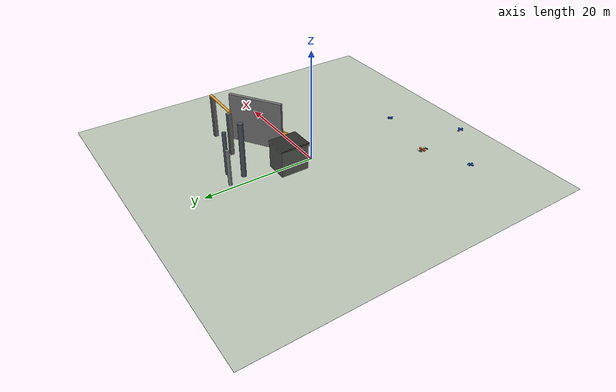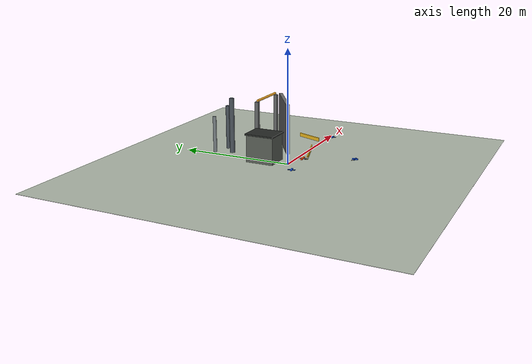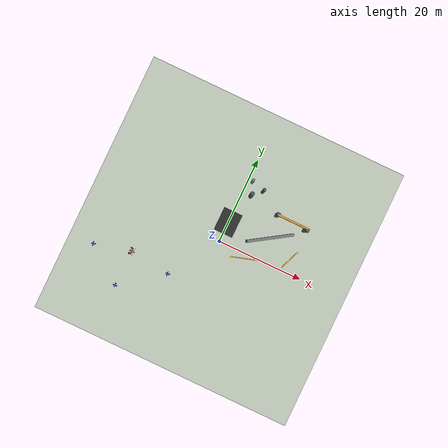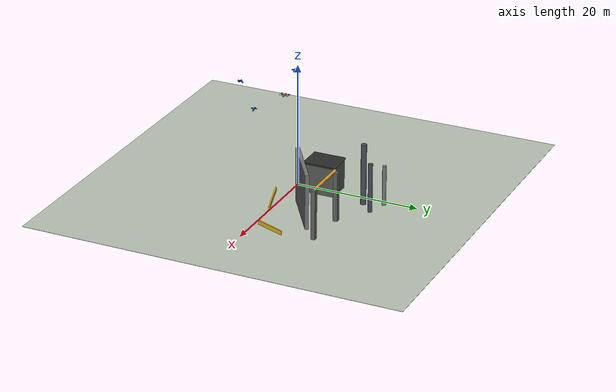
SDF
<?xml version="1.0"?>
<sdf version="1.7">
  <world name="multi_uav_reacquire">
    <physics name="default_physics" type="ignored">
      <max_step_size>0.01</max_step_size>
      <real_time_factor>1.0</real_time_factor>
    </physics>

    <plugin filename="ignition-gazebo-physics-system" name="ignition::gazebo::systems::Physics"/>
    <plugin filename="ignition-gazebo-user-commands-system" name="ignition::gazebo::systems::UserCommands"/>
    <plugin filename="ignition-gazebo-scene-broadcaster-system" name="ignition::gazebo::systems::SceneBroadcaster"/>
    <plugin filename="ignition-gazebo-sensors-system" name="ignition::gazebo::systems::Sensors">
      <render_engine>ogre2</render_engine>
    </plugin>
    <plugin filename="ignition-gazebo-imu-system" name="ignition::gazebo::systems::Imu"/>

    <light name="sun" type="directional">
      <cast_shadows>true</cast_shadows>
      <pose>0 0 20 0 0 0</pose>
      <diffuse>0.9 0.9 0.85 1</diffuse>
      <specular>0.2 0.2 0.2 1</specular>
      <direction>-0.4 0.2 -1.0</direction>
    </light>

    <model name="ground">
      <static>true</static>
      <link name="ground_link">
        <visual name="visual">
          <geometry>
            <box>
              <size>62 62 0.05</size>
            </box>
          </geometry>
          <material>
            <ambient>0.72 0.76 0.70 1</ambient>
            <diffuse>0.72 0.76 0.70 1</diffuse>
          </material>
        </visual>
        <collision name="collision">
          <geometry>
            <box>
              <size>62 62 0.05</size>
            </box>
          </geometry>
        </collision>
      </link>
    </model>

    <include>
      <name>uav_1</name>
      <uri>model://simple_uav</uri>
      <pose>-24 -12 8 0 0 0.24</pose>
    </include>
    <include>
      <name>uav_2</name>
      <uri>model://simple_uav</uri>
      <pose>-16 -18 8 0 0 1.57</pose>
    </include>
    <include>
      <name>uav_3</name>
      <uri>model://simple_uav</uri>
      <pose>-7 -11 8 0 0 0.12</pose>
    </include>

    <include>
      <name>target</name>
      <uri>model://target_marker</uri>
      <pose>-16 -10 7 0 0 0</pose>
    </include>

    <include>
      <name>central_wall</name>
      <uri>model://occlusion_wall</uri>
      <pose>9.5 5.25 4.5 0 0 0.58</pose>
    </include>

    <model name="pipe_gate">
      <static>true</static>
      <link name="gate_link">
        <visual name="left_column">
          <pose>9.0 10.6 4.0 0 0 0</pose>
          <geometry>
            <box>
              <size>0.7 0.7 8.0</size>
            </box>
          </geometry>
          <material>
            <ambient>0.38 0.39 0.39 1</ambient>
            <diffuse>0.38 0.39 0.39 1</diffuse>
          </material>
        </visual>
        <visual name="right_column">
          <pose>16.0 10.2 4.0 0 0 0</pose>
          <geometry>
            <box>
              <size>0.7 0.7 8.0</size>
            </box>
          </geometry>
          <material>
            <ambient>0.38 0.39 0.39 1</ambient>
            <diffuse>0.38 0.39 0.39 1</diffuse>
          </material>
        </visual>
        <visual name="top_pipe">
          <pose>12.5 10.4 8.25 0 1.5708 0</pose>
          <geometry>
            <cylinder>
              <radius>0.22</radius>
              <length>7.2</length>
            </cylinder>
          </geometry>
          <material>
            <ambient>0.9 0.62 0.14 1</ambient>
            <diffuse>0.9 0.62 0.14 1</diffuse>
          </material>
        </visual>
        <collision name="left_column_collision">
          <pose>9.0 10.6 4.0 0 0 0</pose>
          <geometry>
            <box>
              <size>0.7 0.7 8.0</size>
            </box>
          </geometry>
        </collision>
        <collision name="right_column_collision">
          <pose>16.0 10.2 4.0 0 0 0</pose>
          <geometry>
            <box>
              <size>0.7 0.7 8.0</size>
            </box>
          </geometry>
        </collision>
      </link>
    </model>

    <model name="tower_cluster">
      <static>true</static>
      <link name="tower_link">
        <visual name="tower_a">
          <pose>2.0 12.0 5.0 0 0 0</pose>
          <geometry>
            <cylinder>
              <radius>0.45</radius>
              <length>10.0</length>
            </cylinder>
          </geometry>
          <material>
            <ambient>0.28 0.31 0.34 1</ambient>
            <diffuse>0.28 0.31 0.34 1</diffuse>
          </material>
        </visual>
        <visual name="tower_b">
          <pose>4.0 14.0 4.0 0 0 0</pose>
          <geometry>
            <cylinder>
              <radius>0.35</radius>
              <length>8.0</length>
            </cylinder>
          </geometry>
          <material>
            <ambient>0.28 0.31 0.34 1</ambient>
            <diffuse>0.28 0.31 0.34 1</diffuse>
          </material>
        </visual>
        <visual name="tower_c">
          <pose>1.0 15.0 3.3 0 0 0</pose>
          <geometry>
            <cylinder>
              <radius>0.32</radius>
              <length>6.6</length>
            </cylinder>
          </geometry>
          <material>
            <ambient>0.45 0.48 0.49 1</ambient>
            <diffuse>0.45 0.48 0.49 1</diffuse>
          </material>
        </visual>
      </link>
    </model>

    <model name="factory_block">
      <static>true</static>
      <link name="factory_link">
        <visual name="main_block">
          <pose>0 4.5 2.4 0 0 0</pose>
          <geometry>
            <box>
              <size>4.0 5.0 4.8</size>
            </box>
          </geometry>
          <material>
            <ambient>0.34 0.36 0.33 1</ambient>
            <diffuse>0.34 0.36 0.33 1</diffuse>
          </material>
        </visual>
        <visual name="roof_band">
          <pose>0 4.5 4.95 0 0 0</pose>
          <geometry>
            <box>
              <size>4.3 5.3 0.25</size>
            </box>
          </geometry>
          <material>
            <ambient>0.16 0.17 0.16 1</ambient>
            <diffuse>0.16 0.17 0.16 1</diffuse>
          </material>
        </visual>
        <collision name="main_collision">
          <pose>0 4.5 2.4 0 0 0</pose>
          <geometry>
            <box>
              <size>4.0 5.0 4.8</size>
            </box>
          </geometry>
        </collision>
      </link>
    </model>

    <model name="safety_barriers">
      <static>true</static>
      <link name="barrier_link">
        <visual name="barrier_a">
          <pose>7.0 -1.0 0.35 0 0 0.3</pose>
          <geometry>
            <box>
              <size>7.0 0.18 0.7</size>
            </box>
          </geometry>
          <material>
            <ambient>0.95 0.74 0.12 1</ambient>
            <diffuse>0.95 0.74 0.12 1</diffuse>
          </material>
        </visual>
        <visual name="barrier_b">
          <pose>16.0 3.0 0.35 0 0 1.2</pose>
          <geometry>
            <box>
              <size>5.0 0.18 0.7</size>
            </box>
          </geometry>
          <material>
            <ambient>0.95 0.74 0.12 1</ambient>
            <diffuse>0.95 0.74 0.12 1</diffuse>
          </material>
        </visual>
      </link>
    </model>
  </world>
</sdf>

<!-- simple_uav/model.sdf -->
<sdf version="1.7">
  <model name="simple_uav">
    <static>false</static>
    <link name="base_link">
      <gravity>false</gravity>
      <inertial>
        <mass>1.0</mass>
        <inertia>
          <ixx>0.02</ixx>
          <iyy>0.02</iyy>
          <izz>0.04</izz>
          <ixy>0.0</ixy>
          <ixz>0.0</ixz>
          <iyz>0.0</iyz>
        </inertia>
      </inertial>
      <visual name="body">
        <geometry>
          <box>
            <size>0.8 0.22 0.16</size>
          </box>
        </geometry>
        <material>
          <ambient>0.1 0.35 0.9 1</ambient>
          <diffuse>0.1 0.35 0.9 1</diffuse>
        </material>
      </visual>
      <visual name="left_arm">
        <geometry>
          <box>
            <size>0.18 1.0 0.08</size>
          </box>
        </geometry>
        <material>
          <ambient>0.05 0.2 0.55 1</ambient>
          <diffuse>0.05 0.2 0.55 1</diffuse>
        </material>
      </visual>
      <visual name="camera_frustum">
        <pose>0.45 0 -0.18 0 0.35 0</pose>
        <geometry>
          <box>
            <size>0.18 0.32 0.08</size>
          </box>
        </geometry>
        <material>
          <ambient>0.02 0.02 0.02 1</ambient>
          <diffuse>0.02 0.02 0.02 1</diffuse>
        </material>
      </visual>
      <collision name="collision">
        <geometry>
          <box>
            <size>0.9 1.05 0.2</size>
          </box>
        </geometry>
      </collision>
      <sensor name="front_camera" type="camera">
        <pose>0.48 0 -0.18 0 0.45 0</pose>
        <always_on>true</always_on>
        <update_rate>20</update_rate>
        <camera>
          <horizontal_fov>1.3962634</horizontal_fov>
          <image>
            <width>640</width>
            <height>480</height>
            <format>R8G8B8</format>
          </image>
          <clip>
            <near>0.1</near>
            <far>120</far>
          </clip>
        </camera>
      </sensor>
      <sensor name="imu_sensor" type="imu">
        <always_on>true</always_on>
        <update_rate>100</update_rate>
        <imu>
          <angular_velocity>
            <x>
              <noise type="gaussian">
                <mean>0</mean>
                <stddev>0.0002</stddev>
              </noise>
            </x>
            <y>
              <noise type="gaussian">
                <mean>0</mean>
                <stddev>0.0002</stddev>
              </noise>
            </y>
            <z>
              <noise type="gaussian">
                <mean>0</mean>
                <stddev>0.0002</stddev>
              </noise>
            </z>
          </angular_velocity>
          <linear_acceleration>
            <x>
              <noise type="gaussian">
                <mean>0</mean>
                <stddev>0.01</stddev>
              </noise>
            </x>
            <y>
              <noise type="gaussian">
                <mean>0</mean>
                <stddev>0.01</stddev>
              </noise>
            </y>
            <z>
              <noise type="gaussian">
                <mean>0</mean>
                <stddev>0.01</stddev>
              </noise>
            </z>
          </linear_acceleration>
        </imu>
      </sensor>
    </link>
  </model>
</sdf>

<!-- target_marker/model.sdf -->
<sdf version="1.7">
  <model name="target_marker">
    <static>false</static>
    <link name="base_link">
      <gravity>false</gravity>
      <inertial>
        <mass>0.5</mass>
        <inertia>
          <ixx>0.01</ixx>
          <iyy>0.01</iyy>
          <izz>0.01</izz>
          <ixy>0.0</ixy>
          <ixz>0.0</ixz>
          <iyz>0.0</iyz>
        </inertia>
      </inertial>

      <visual name="body">
        <geometry>
          <box>
            <size>1.05 0.24 0.18</size>
          </box>
        </geometry>
        <material>
          <ambient>1.0 0.28 0.04 1</ambient>
          <diffuse>1.0 0.28 0.04 1</diffuse>
          <specular>0.4 0.2 0.1 1</specular>
        </material>
      </visual>

      <visual name="cross_arm">
        <geometry>
          <box>
            <size>0.18 1.45 0.08</size>
          </box>
        </geometry>
        <material>
          <ambient>0.03 0.03 0.035 1</ambient>
          <diffuse>0.03 0.03 0.035 1</diffuse>
        </material>
      </visual>

      <visual name="nose">
        <pose>0.58 0 0 0 0 0</pose>
        <geometry>
          <box>
            <size>0.18 0.18 0.16</size>
          </box>
        </geometry>
        <material>
          <ambient>1.0 0.95 0.18 1</ambient>
          <diffuse>1.0 0.95 0.18 1</diffuse>
        </material>
      </visual>

      <visual name="rotor_front_left">
        <pose>0.32 0.62 0.06 0 0 0</pose>
        <geometry>
          <cylinder>
            <radius>0.18</radius>
            <length>0.04</length>
          </cylinder>
        </geometry>
        <material>
          <ambient>0.95 0.95 0.95 1</ambient>
          <diffuse>0.95 0.95 0.95 1</diffuse>
        </material>
      </visual>

      <visual name="rotor_front_right">
        <pose>0.32 -0.62 0.06 0 0 0</pose>
        <geometry>
          <cylinder>
            <radius>0.18</radius>
            <length>0.04</length>
          </cylinder>
        </geometry>
        <material>
          <ambient>0.95 0.95 0.95 1</ambient>
          <diffuse>0.95 0.95 0.95 1</diffuse>
        </material>
      </visual>

      <visual name="rotor_rear_left">
        <pose>-0.32 0.62 0.06 0 0 0</pose>
        <geometry>
          <cylinder>
            <radius>0.18</radius>
            <length>0.04</length>
          </cylinder>
        </geometry>
        <material>
          <ambient>0.12 0.12 0.12 1</ambient>
          <diffuse>0.12 0.12 0.12 1</diffuse>
        </material>
      </visual>

      <visual name="rotor_rear_right">
        <pose>-0.32 -0.62 0.06 0 0 0</pose>
        <geometry>
          <cylinder>
            <radius>0.18</radius>
            <length>0.04</length>
          </cylinder>
        </geometry>
        <material>
          <ambient>0.12 0.12 0.12 1</ambient>
          <diffuse>0.12 0.12 0.12 1</diffuse>
        </material>
      </visual>

      <collision name="collision">
        <geometry>
          <box>
            <size>1.1 1.5 0.22</size>
          </box>
        </geometry>
      </collision>
    </link>
  </model>
</sdf>

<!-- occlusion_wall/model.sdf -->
<sdf version="1.7">
  <model name="occlusion_wall">
    <static>true</static>
    <link name="wall">
      <visual name="visual">
        <geometry>
          <box>
            <size>10.0 0.6 9.0</size>
          </box>
        </geometry>
        <material>
          <ambient>0.45 0.45 0.45 1</ambient>
          <diffuse>0.45 0.45 0.45 1</diffuse>
        </material>
      </visual>
      <collision name="collision">
        <geometry>
          <box>
            <size>10.0 0.6 9.0</size>
          </box>
        </geometry>
      </collision>
    </link>
  </model>
</sdf>
